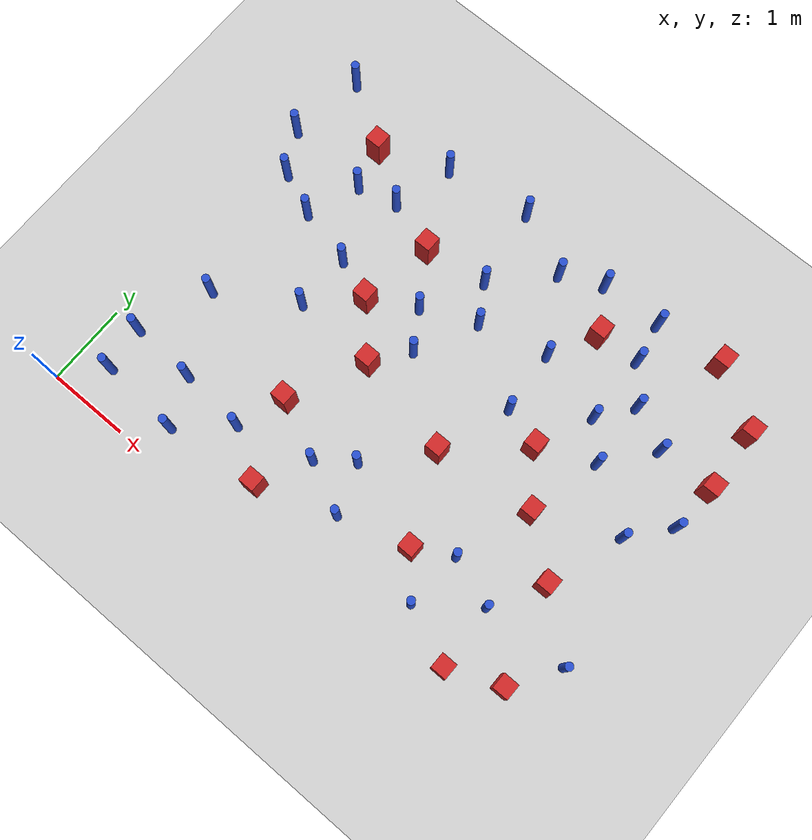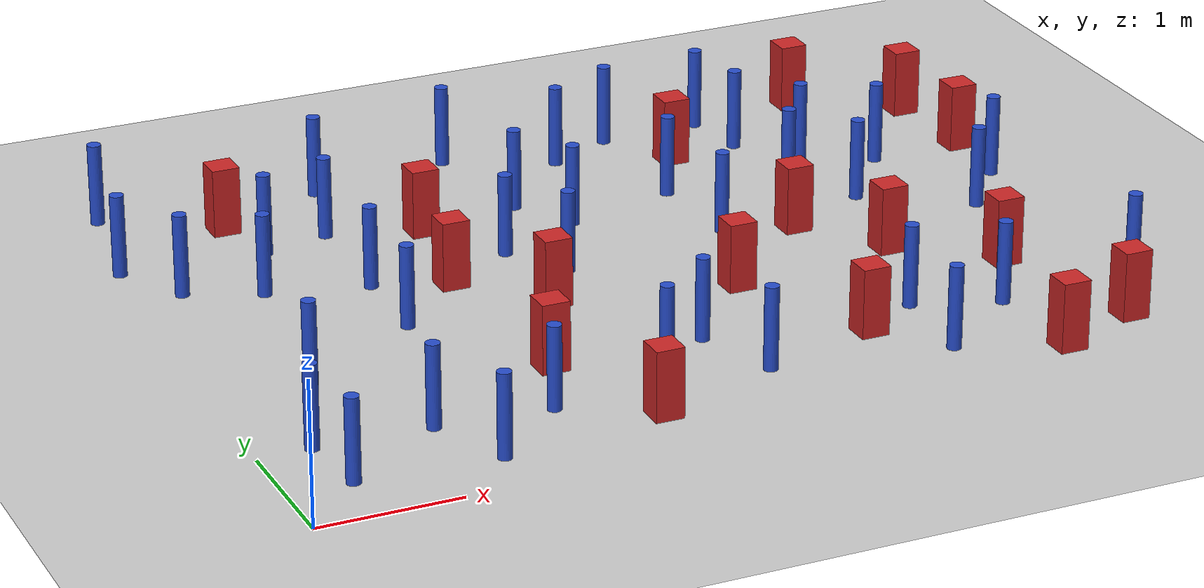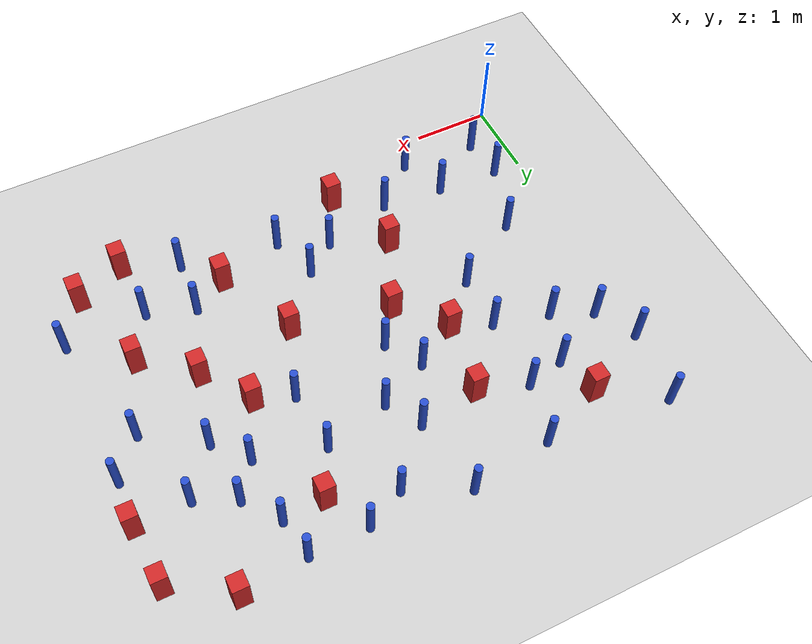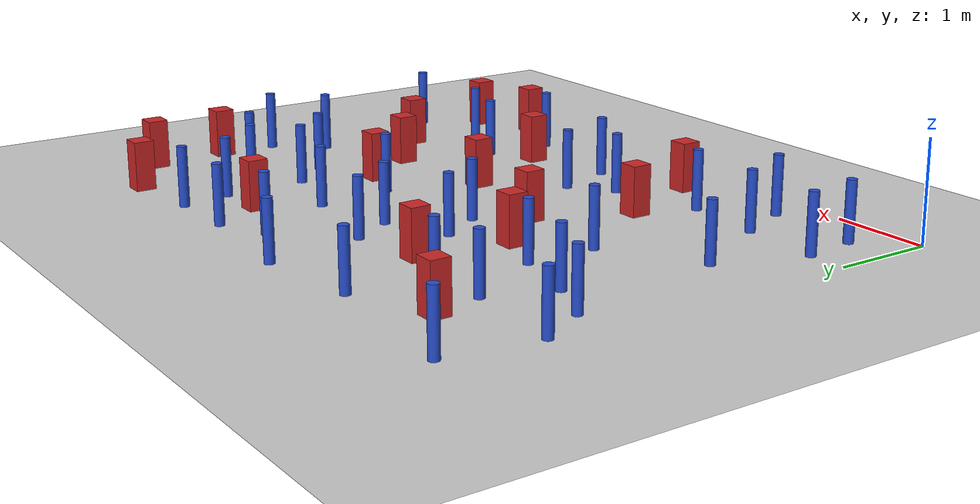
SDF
<sdf version="1.6">
 <world name="default">
  <model name="ground_plane">
   <static>1</static>
   <link name="link">
    <collision name="collision">
     <geometry><plane><normal>0 0 1</normal><size>100 100</size></plane></geometry>
     <surface><friction><ode><mu>100</mu><mu2>50</mu2></ode></friction></surface>
    </collision>
    <visual name="visual">
     <cast_shadows>0</cast_shadows>
     <geometry><plane><normal>0 0 1</normal><size>100 100</size></plane></geometry>
     <material>
      <ambient>1.0 1.0 1.0 1.0</ambient>
      <diffuse>0.8 0.8 0.8 1.0</diffuse>
      <specular>0.01 0.01 0.01 1.000000</specular>
     </material>
    </visual>
   </link>
  </model>
  <model name="pole_obstacle2">
   <static>true</static>
   <pose>3.64827006361 4.64139536946 -9.47619616065e-06 5.49618799738e-07 2.3631041406e-07 -1.55090534801e-07</pose>
   <link name="link">
    <pose>0 0 0.3 0 -0 0</pose>
    <inertial>
     <mass>1</mass>
     <inertia><ixx>0.145833</ixx><ixy>0</ixy><ixz>0</ixz><iyy>0.145833</iyy><iyz>0</iyz><izz>0.125</izz></inertia>
    </inertial>
    <collision name="collision">
     <geometry><cylinder><radius>0.05</radius><length>.6</length></cylinder></geometry>
    </collision>
    <visual name="visual">
     <geometry><cylinder><radius>0.05</radius><length>.6</length></cylinder></geometry>
     <material>
      <script><name>Gazebo/Blue</name><uri>file://media/materials/scripts/gazebo.material</uri></script>
     </material>
    </visual>
   </link>
  </model>
  <model name="square_post_obstacle2">
   <static>true</static>
   <pose>2.5933843695 0.53864934318 -6.11067671241e-07 -5.50515727128e-06 -8.79689657224e-07 2.37013304536e-05</pose>
   <link name="link">
    <pose>0 0 0.25 0 -0 0</pose>
    <inertial>
     <mass>100</mass>
     <inertia>
      <ixx>0.166667</ixx>
      <ixy>0</ixy>
      <ixz>0</ixz>
      <iyy>0.166667</iyy>
      <iyz>0</iyz>
      <izz>0.166667</izz>
     </inertia>
    </inertial>
    <collision name="collision"><geometry><box><size>.2 .2 .5</size></box></geometry></collision>
    <visual name="visual">
     <geometry><box><size>.2 .2 .5</size></box></geometry>
     <material>
      <script><name>Gazebo/Red</name><uri>file://media/materials/scripts/gazebo.material</uri></script>
     </material>
    </visual>
   </link>
  </model>
  <model name="square_post_obstacle4">
   <static>true</static>
   <pose>6.48960787232 3.74774765811 -6.11067671241e-07 -5.50515727128e-06 -8.79689657224e-07 2.37013304536e-05</pose>
   <link name="link">
    <pose>0 0 0.25 0 -0 0</pose>
    <inertial>
     <mass>100</mass>
     <inertia>
      <ixx>0.166667</ixx>
      <ixy>0</ixy>
      <ixz>0</ixz>
      <iyy>0.166667</iyy>
      <iyz>0</iyz>
      <izz>0.166667</izz>
     </inertia>
    </inertial>
    <collision name="collision"><geometry><box><size>.2 .2 .5</size></box></geometry></collision>
    <visual name="visual">
     <geometry><box><size>.2 .2 .5</size></box></geometry>
     <material>
      <script><name>Gazebo/Red</name><uri>file://media/materials/scripts/gazebo.material</uri></script>
     </material>
    </visual>
   </link>
  </model>
  <model name="pole_obstacle7">
   <static>true</static>
   <pose>5.41939014065 1.15405519422 -9.47619616065e-06 5.49618799738e-07 2.36310414071e-07 -1.55090534796e-07</pose>
   <link name="link">
    <pose>0 0 0.3 0 -0 0</pose>
    <inertial>
     <mass>1</mass>
     <inertia><ixx>0.145833</ixx><ixy>0</ixy><ixz>0</ixz><iyy>0.145833</iyy><iyz>0</iyz><izz>0.125</izz></inertia>
    </inertial>
    <collision name="collision">
     <geometry><cylinder><radius>0.05</radius><length>.6</length></cylinder></geometry>
    </collision>
    <visual name="visual">
     <geometry><cylinder><radius>0.05</radius><length>.6</length></cylinder></geometry>
     <material>
      <script><name>Gazebo/Blue</name><uri>file://media/materials/scripts/gazebo.material</uri></script>
     </material>
    </visual>
   </link>
  </model>
  <model name="pole_obstacle15">
   <static>true</static>
   <pose>5.80588194587 3.73845712251 -9.47619616065e-06 5.49618799738e-07 2.36310414051e-07 -1.55090534805e-07</pose>
   <link name="link">
    <pose>0 0 0.3 0 -0 0</pose>
    <inertial>
     <mass>1</mass>
     <inertia><ixx>0.145833</ixx><ixy>0</ixy><ixz>0</ixz><iyy>0.145833</iyy><iyz>0</iyz><izz>0.125</izz></inertia>
    </inertial>
    <collision name="collision">
     <geometry><cylinder><radius>0.05</radius><length>.6</length></cylinder></geometry>
    </collision>
    <visual name="visual">
     <geometry><cylinder><radius>0.05</radius><length>.6</length></cylinder></geometry>
     <material>
      <script><name>Gazebo/Blue</name><uri>file://media/materials/scripts/gazebo.material</uri></script>
     </material>
    </visual>
   </link>
  </model>
  <model name="pole_obstacle22">
   <static>true</static>
   <pose>2.90407277944 1.15484477547 -9.47619616065e-06 5.49618799737e-07 2.36310414072e-07 -1.55090534793e-07</pose>
   <link name="link">
    <pose>0 0 0.3 0 -0 0</pose>
    <inertial>
     <mass>1</mass>
     <inertia><ixx>0.145833</ixx><ixy>0</ixy><ixz>0</ixz><iyy>0.145833</iyy><iyz>0</iyz><izz>0.125</izz></inertia>
    </inertial>
    <collision name="collision">
     <geometry><cylinder><radius>0.05</radius><length>.6</length></cylinder></geometry>
    </collision>
    <visual name="visual">
     <geometry><cylinder><radius>0.05</radius><length>.6</length></cylinder></geometry>
     <material>
      <script><name>Gazebo/Blue</name><uri>file://media/materials/scripts/gazebo.material</uri></script>
     </material>
    </visual>
   </link>
  </model>
  <model name="pole_obstacle31">
   <static>true</static>
   <pose>0.258231980519 4.98055791909 -9.47619616065e-06 5.49618799737e-07 2.36310414067e-07 -1.55090534795e-07</pose>
   <link name="link">
    <pose>0 0 0.3 0 -0 0</pose>
    <inertial>
     <mass>1</mass>
     <inertia><ixx>0.145833</ixx><ixy>0</ixy><ixz>0</ixz><iyy>0.145833</iyy><iyz>0</iyz><izz>0.125</izz></inertia>
    </inertial>
    <collision name="collision">
     <geometry><cylinder><radius>0.05</radius><length>.6</length></cylinder></geometry>
    </collision>
    <visual name="visual">
     <geometry><cylinder><radius>0.05</radius><length>.6</length></cylinder></geometry>
     <material>
      <script><name>Gazebo/Blue</name><uri>file://media/materials/scripts/gazebo.material</uri></script>
     </material>
    </visual>
   </link>
  </model>
  <model name="square_post_obstacle28">
   <static>true</static>
   <pose>2.64574567322 2.40821894053 -6.11067671241e-07 -5.50515727128e-06 -8.79689657224e-07 2.37013304536e-05</pose>
   <link name="link">
    <pose>0 0 0.25 0 -0 0</pose>
    <inertial>
     <mass>100</mass>
     <inertia>
      <ixx>0.166667</ixx>
      <ixy>0</ixy>
      <ixz>0</ixz>
      <iyy>0.166667</iyy>
      <iyz>0</iyz>
      <izz>0.166667</izz>
     </inertia>
    </inertial>
    <collision name="collision"><geometry><box><size>.2 .2 .5</size></box></geometry></collision>
    <visual name="visual">
     <geometry><box><size>.2 .2 .5</size></box></geometry>
     <material>
      <script><name>Gazebo/Red</name><uri>file://media/materials/scripts/gazebo.material</uri></script>
     </material>
    </visual>
   </link>
  </model>
  <model name="pole_obstacle34">
   <static>true</static>
   <pose>6.45765616082 1.19782271041 -9.47619616065e-06 5.49618799738e-07 2.36310414071e-07 -1.55090534796e-07</pose>
   <link name="link">
    <pose>0 0 0.3 0 -0 0</pose>
    <inertial>
     <mass>1</mass>
     <inertia><ixx>0.145833</ixx><ixy>0</ixy><ixz>0</ixz><iyy>0.145833</iyy><iyz>0</iyz><izz>0.125</izz></inertia>
    </inertial>
    <collision name="collision">
     <geometry><cylinder><radius>0.05</radius><length>.6</length></cylinder></geometry>
    </collision>
    <visual name="visual">
     <geometry><cylinder><radius>0.05</radius><length>.6</length></cylinder></geometry>
     <material>
      <script><name>Gazebo/Blue</name><uri>file://media/materials/scripts/gazebo.material</uri></script>
     </material>
    </visual>
   </link>
  </model>
  <model name="square_post_obstacle32">
   <static>true</static>
   <pose>5.12955143993 2.27299432949 -6.11067671241e-07 -5.50515727128e-06 -8.79689657224e-07 2.37013304536e-05</pose>
   <link name="link">
    <pose>0 0 0.25 0 -0 0</pose>
    <inertial>
     <mass>100</mass>
     <inertia>
      <ixx>0.166667</ixx>
      <ixy>0</ixy>
      <ixz>0</ixz>
      <iyy>0.166667</iyy>
      <iyz>0</iyz>
      <izz>0.166667</izz>
     </inertia>
    </inertial>
    <collision name="collision"><geometry><box><size>.2 .2 .5</size></box></geometry></collision>
    <visual name="visual">
     <geometry><box><size>.2 .2 .5</size></box></geometry>
     <material>
      <script><name>Gazebo/Red</name><uri>file://media/materials/scripts/gazebo.material</uri></script>
     </material>
    </visual>
   </link>
  </model>
  <model name="square_post_obstacle41">
   <static>true</static>
   <pose>2.21705216927 1.48048706928 -6.11067671241e-07 -5.50515727128e-06 -8.79689657224e-07 2.37013304536e-05</pose>
   <link name="link">
    <pose>0 0 0.25 0 -0 0</pose>
    <inertial>
     <mass>100</mass>
     <inertia>
      <ixx>0.166667</ixx>
      <ixy>0</ixy>
      <ixz>0</ixz>
      <iyy>0.166667</iyy>
      <iyz>0</iyz>
      <izz>0.166667</izz>
     </inertia>
    </inertial>
    <collision name="collision"><geometry><box><size>.2 .2 .5</size></box></geometry></collision>
    <visual name="visual">
     <geometry><box><size>.2 .2 .5</size></box></geometry>
     <material>
      <script><name>Gazebo/Red</name><uri>file://media/materials/scripts/gazebo.material</uri></script>
     </material>
    </visual>
   </link>
  </model>
  <model name="square_post_obstacle42">
   <static>true</static>
   <pose>4.44764341895 4.35927794571 -6.11067671241e-07 -5.50515727128e-06 -8.79689657224e-07 2.37013304536e-05</pose>
   <link name="link">
    <pose>0 0 0.25 0 -0 0</pose>
    <inertial>
     <mass>100</mass>
     <inertia>
      <ixx>0.166667</ixx>
      <ixy>0</ixy>
      <ixz>0</ixz>
      <iyy>0.166667</iyy>
      <iyz>0</iyz>
      <izz>0.166667</izz>
     </inertia>
    </inertial>
    <collision name="collision"><geometry><box><size>.2 .2 .5</size></box></geometry></collision>
    <visual name="visual">
     <geometry><box><size>.2 .2 .5</size></box></geometry>
     <material>
      <script><name>Gazebo/Red</name><uri>file://media/materials/scripts/gazebo.material</uri></script>
     </material>
    </visual>
   </link>
  </model>
  <model name="pole_obstacle57">
   <static>true</static>
   <pose>0.444901139323 0.4705834862 -9.47619616065e-06 5.49618799737e-07 2.36310414059e-07 -1.55090534801e-07</pose>
   <link name="link">
    <pose>0 0 0.3 0 -0 0</pose>
    <inertial>
     <mass>1</mass>
     <inertia><ixx>0.145833</ixx><ixy>0</ixy><ixz>0</ixz><iyy>0.145833</iyy><iyz>0</iyz><izz>0.125</izz></inertia>
    </inertial>
    <collision name="collision">
     <geometry><cylinder><radius>0.05</radius><length>.6</length></cylinder></geometry>
    </collision>
    <visual name="visual">
     <geometry><cylinder><radius>0.05</radius><length>.6</length></cylinder></geometry>
     <material>
      <script><name>Gazebo/Blue</name><uri>file://media/materials/scripts/gazebo.material</uri></script>
     </material>
    </visual>
   </link>
  </model>
  <model name="pole_obstacle59">
   <static>true</static>
   <pose>0.376433804621 1.01182041943 -9.47619616065e-06 5.49618799737e-07 2.36310414063e-07 -1.55090534797e-07</pose>
   <link name="link">
    <pose>0 0 0.3 0 -0 0</pose>
    <inertial>
     <mass>1</mass>
     <inertia><ixx>0.145833</ixx><ixy>0</ixy><ixz>0</ixz><iyy>0.145833</iyy><iyz>0</iyz><izz>0.125</izz></inertia>
    </inertial>
    <collision name="collision">
     <geometry><cylinder><radius>0.05</radius><length>.6</length></cylinder></geometry>
    </collision>
    <visual name="visual">
     <geometry><cylinder><radius>0.05</radius><length>.6</length></cylinder></geometry>
     <material>
      <script><name>Gazebo/Blue</name><uri>file://media/materials/scripts/gazebo.material</uri></script>
     </material>
    </visual>
   </link>
  </model>
  <model name="pole_obstacle68">
   <static>true</static>
   <pose>6.07585043985 2.69736077914 -9.47619616065e-06 5.49618799738e-07 2.36310414051e-07 -1.55090534805e-07</pose>
   <link name="link">
    <pose>0 0 0.3 0 -0 0</pose>
    <inertial>
     <mass>1</mass>
     <inertia><ixx>0.145833</ixx><ixy>0</ixy><ixz>0</ixz><iyy>0.145833</iyy><iyz>0</iyz><izz>0.125</izz></inertia>
    </inertial>
    <collision name="collision">
     <geometry><cylinder><radius>0.05</radius><length>.6</length></cylinder></geometry>
    </collision>
    <visual name="visual">
     <geometry><cylinder><radius>0.05</radius><length>.6</length></cylinder></geometry>
     <material>
      <script><name>Gazebo/Blue</name><uri>file://media/materials/scripts/gazebo.material</uri></script>
     </material>
    </visual>
   </link>
  </model>
  <model name="square_post_obstacle52">
   <static>true</static>
   <pose>2.13233644787 2.96930291562 -6.11067671241e-07 -5.50515727128e-06 -8.79689657224e-07 2.37013304536e-05</pose>
   <link name="link">
    <pose>0 0 0.25 0 -0 0</pose>
    <inertial>
     <mass>100</mass>
     <inertia>
      <ixx>0.166667</ixx>
      <ixy>0</ixy>
      <ixz>0</ixz>
      <iyy>0.166667</iyy>
      <iyz>0</iyz>
      <izz>0.166667</izz>
     </inertia>
    </inertial>
    <collision name="collision"><geometry><box><size>.2 .2 .5</size></box></geometry></collision>
    <visual name="visual">
     <geometry><box><size>.2 .2 .5</size></box></geometry>
     <material>
      <script><name>Gazebo/Red</name><uri>file://media/materials/scripts/gazebo.material</uri></script>
     </material>
    </visual>
   </link>
  </model>
  <model name="square_post_obstacle58">
   <static>true</static>
   <pose>6.08697108432 0.623994106372 -6.11067671241e-07 -5.50515727128e-06 -8.79689657224e-07 2.37013304536e-05</pose>
   <link name="link">
    <pose>0 0 0.25 0 -0 0</pose>
    <inertial>
     <mass>100</mass>
     <inertia>
      <ixx>0.166667</ixx>
      <ixy>0</ixy>
      <ixz>0</ixz>
      <iyy>0.166667</iyy>
      <iyz>0</iyz>
      <izz>0.166667</izz>
     </inertia>
    </inertial>
    <collision name="collision"><geometry><box><size>.2 .2 .5</size></box></geometry></collision>
    <visual name="visual">
     <geometry><box><size>.2 .2 .5</size></box></geometry>
     <material>
      <script><name>Gazebo/Red</name><uri>file://media/materials/scripts/gazebo.material</uri></script>
     </material>
    </visual>
   </link>
  </model>
  <model name="pole_obstacle76">
   <static>true</static>
   <pose>1.61790593784 3.15919963644 -9.47619616065e-06 5.49618799737e-07 2.36310414062e-07 -1.55090534798e-07</pose>
   <link name="link">
    <pose>0 0 0.3 0 -0 0</pose>
    <inertial>
     <mass>1</mass>
     <inertia><ixx>0.145833</ixx><ixy>0</ixy><ixz>0</ixz><iyy>0.145833</iyy><iyz>0</iyz><izz>0.125</izz></inertia>
    </inertial>
    <collision name="collision">
     <geometry><cylinder><radius>0.05</radius><length>.6</length></cylinder></geometry>
    </collision>
    <visual name="visual">
     <geometry><cylinder><radius>0.05</radius><length>.6</length></cylinder></geometry>
     <material>
      <script><name>Gazebo/Blue</name><uri>file://media/materials/scripts/gazebo.material</uri></script>
     </material>
    </visual>
   </link>
  </model>
  <model name="square_post_obstacle65">
   <static>true</static>
   <pose>1.02355732992 4.49002078111 -6.11067671241e-07 -5.50515727128e-06 -8.79689657224e-07 2.37013304536e-05</pose>
   <link name="link">
    <pose>0 0 0.25 0 -0 0</pose>
    <inertial>
     <mass>100</mass>
     <inertia>
      <ixx>0.166667</ixx>
      <ixy>0</ixy>
      <ixz>0</ixz>
      <iyy>0.166667</iyy>
      <iyz>0</iyz>
      <izz>0.166667</izz>
     </inertia>
    </inertial>
    <collision name="collision"><geometry><box><size>.2 .2 .5</size></box></geometry></collision>
    <visual name="visual">
     <geometry><box><size>.2 .2 .5</size></box></geometry>
     <material>
      <script><name>Gazebo/Red</name><uri>file://media/materials/scripts/gazebo.material</uri></script>
     </material>
    </visual>
   </link>
  </model>
  <model name="pole_obstacle78">
   <static>true</static>
   <pose>5.30607369204 3.97363138098 -9.47619616065e-06 5.49618799737e-07 2.36310414054e-07 -1.55090534804e-07</pose>
   <link name="link">
    <pose>0 0 0.3 0 -0 0</pose>
    <inertial>
     <mass>1</mass>
     <inertia><ixx>0.145833</ixx><ixy>0</ixy><ixz>0</ixz><iyy>0.145833</iyy><iyz>0</iyz><izz>0.125</izz></inertia>
    </inertial>
    <collision name="collision">
     <geometry><cylinder><radius>0.05</radius><length>.6</length></cylinder></geometry>
    </collision>
    <visual name="visual">
     <geometry><cylinder><radius>0.05</radius><length>.6</length></cylinder></geometry>
     <material>
      <script><name>Gazebo/Blue</name><uri>file://media/materials/scripts/gazebo.material</uri></script>
     </material>
    </visual>
   </link>
  </model>
  <model name="square_post_obstacle68">
   <static>true</static>
   <pose>4.37310517181 1.10966237829 -6.11067671241e-07 -5.50515727128e-06 -8.79689657224e-07 2.37013304536e-05</pose>
   <link name="link">
    <pose>0 0 0.25 0 -0 0</pose>
    <inertial>
     <mass>100</mass>
     <inertia>
      <ixx>0.166667</ixx>
      <ixy>0</ixy>
      <ixz>0</ixz>
      <iyy>0.166667</iyy>
      <iyz>0</iyz>
      <izz>0.166667</izz>
     </inertia>
    </inertial>
    <collision name="collision"><geometry><box><size>.2 .2 .5</size></box></geometry></collision>
    <visual name="visual">
     <geometry><box><size>.2 .2 .5</size></box></geometry>
     <material>
      <script><name>Gazebo/Red</name><uri>file://media/materials/scripts/gazebo.material</uri></script>
     </material>
    </visual>
   </link>
  </model>
  <model name="pole_obstacle82">
   <static>true</static>
   <pose>0.70045014602 1.89455593118 -9.47619616065e-06 5.49618799738e-07 2.36310414061e-07 -1.55090534801e-07</pose>
   <link name="link">
    <pose>0 0 0.3 0 -0 0</pose>
    <inertial>
     <mass>1</mass>
     <inertia><ixx>0.145833</ixx><ixy>0</ixy><ixz>0</ixz><iyy>0.145833</iyy><iyz>0</iyz><izz>0.125</izz></inertia>
    </inertial>
    <collision name="collision">
     <geometry><cylinder><radius>0.05</radius><length>.6</length></cylinder></geometry>
    </collision>
    <visual name="visual">
     <geometry><cylinder><radius>0.05</radius><length>.6</length></cylinder></geometry>
     <material>
      <script><name>Gazebo/Blue</name><uri>file://media/materials/scripts/gazebo.material</uri></script>
     </material>
    </visual>
   </link>
  </model>
  <model name="square_post_obstacle73">
   <static>true</static>
   <pose>5.75783311615 1.76391020135 -6.11067671241e-07 -5.50515727128e-06 -8.79689657224e-07 2.37013304536e-05</pose>
   <link name="link">
    <pose>0 0 0.25 0 -0 0</pose>
    <inertial>
     <mass>100</mass>
     <inertia>
      <ixx>0.166667</ixx>
      <ixy>0</ixy>
      <ixz>0</ixz>
      <iyy>0.166667</iyy>
      <iyz>0</iyz>
      <izz>0.166667</izz>
     </inertia>
    </inertial>
    <collision name="collision"><geometry><box><size>.2 .2 .5</size></box></geometry></collision>
    <visual name="visual">
     <geometry><box><size>.2 .2 .5</size></box></geometry>
     <material>
      <script><name>Gazebo/Red</name><uri>file://media/materials/scripts/gazebo.material</uri></script>
     </material>
    </visual>
   </link>
  </model>
  <model name="pole_obstacle90">
   <static>true</static>
   <pose>1.43057988366 0.399294750019 -9.47619616065e-06 5.49618799737e-07 2.36310414064e-07 -1.55090534799e-07</pose>
   <link name="link">
    <pose>0 0 0.3 0 -0 0</pose>
    <inertial>
     <mass>1</mass>
     <inertia><ixx>0.145833</ixx><ixy>0</ixy><ixz>0</ixz><iyy>0.145833</iyy><iyz>0</iyz><izz>0.125</izz></inertia>
    </inertial>
    <collision name="collision">
     <geometry><cylinder><radius>0.05</radius><length>.6</length></cylinder></geometry>
    </collision>
    <visual name="visual">
     <geometry><cylinder><radius>0.05</radius><length>.6</length></cylinder></geometry>
     <material>
      <script><name>Gazebo/Blue</name><uri>file://media/materials/scripts/gazebo.material</uri></script>
     </material>
    </visual>
   </link>
  </model>
  <model name="pole_obstacle101">
   <static>true</static>
   <pose>3.04928678563 4.01238981591 -9.47619616065e-06 5.49618799737e-07 2.36310414061e-07 -1.55090534801e-07</pose>
   <link name="link">
    <pose>0 0 0.3 0 -0 0</pose>
    <inertial>
     <mass>1</mass>
     <inertia><ixx>0.145833</ixx><ixy>0</ixy><ixz>0</ixz><iyy>0.145833</iyy><iyz>0</iyz><izz>0.125</izz></inertia>
    </inertial>
    <collision name="collision">
     <geometry><cylinder><radius>0.05</radius><length>.6</length></cylinder></geometry>
    </collision>
    <visual name="visual">
     <geometry><cylinder><radius>0.05</radius><length>.6</length></cylinder></geometry>
     <material>
      <script><name>Gazebo/Blue</name><uri>file://media/materials/scripts/gazebo.material</uri></script>
     </material>
    </visual>
   </link>
  </model>
  <model name="square_post_obstacle98">
   <static>true</static>
   <pose>2.28259745326 3.88660938742 -6.11067671241e-07 -5.50515727128e-06 -8.79689657224e-07 2.37013304536e-05</pose>
   <link name="link">
    <pose>0 0 0.25 0 -0 0</pose>
    <inertial>
     <mass>100</mass>
     <inertia>
      <ixx>0.166667</ixx>
      <ixy>0</ixy>
      <ixz>0</ixz>
      <iyy>0.166667</iyy>
      <iyz>0</iyz>
      <izz>0.166667</izz>
     </inertia>
    </inertial>
    <collision name="collision"><geometry><box><size>.2 .2 .5</size></box></geometry></collision>
    <visual name="visual">
     <geometry><box><size>.2 .2 .5</size></box></geometry>
     <material>
      <script><name>Gazebo/Red</name><uri>file://media/materials/scripts/gazebo.material</uri></script>
     </material>
    </visual>
   </link>
  </model>
  <model name="pole_obstacle105">
   <static>true</static>
   <pose>5.3573500427 3.17229279199 -9.47619616065e-06 5.49618799738e-07 2.36310414051e-07 -1.55090534805e-07</pose>
   <link name="link">
    <pose>0 0 0.3 0 -0 0</pose>
    <inertial>
     <mass>1</mass>
     <inertia><ixx>0.145833</ixx><ixy>0</ixy><ixz>0</ixz><iyy>0.145833</iyy><iyz>0</iyz><izz>0.125</izz></inertia>
    </inertial>
    <collision name="collision">
     <geometry><cylinder><radius>0.05</radius><length>.6</length></cylinder></geometry>
    </collision>
    <visual name="visual">
     <geometry><cylinder><radius>0.05</radius><length>.6</length></cylinder></geometry>
     <material>
      <script><name>Gazebo/Blue</name><uri>file://media/materials/scripts/gazebo.material</uri></script>
     </material>
    </visual>
   </link>
  </model>
  <model name="pole_obstacle107">
   <static>true</static>
   <pose>0.118294266724 4.05410882628 -9.47619616065e-06 5.49618799737e-07 2.36310414061e-07 -1.550905348e-07</pose>
   <link name="link">
    <pose>0 0 0.3 0 -0 0</pose>
    <inertial>
     <mass>1</mass>
     <inertia><ixx>0.145833</ixx><ixy>0</ixy><ixz>0</ixz><iyy>0.145833</iyy><iyz>0</iyz><izz>0.125</izz></inertia>
    </inertial>
    <collision name="collision">
     <geometry><cylinder><radius>0.05</radius><length>.6</length></cylinder></geometry>
    </collision>
    <visual name="visual">
     <geometry><cylinder><radius>0.05</radius><length>.6</length></cylinder></geometry>
     <material>
      <script><name>Gazebo/Blue</name><uri>file://media/materials/scripts/gazebo.material</uri></script>
     </material>
    </visual>
   </link>
  </model>
  <model name="pole_obstacle109">
   <static>true</static>
   <pose>1.60424517653 2.45528885384 -9.47619616065e-06 5.49618799737e-07 2.36310414062e-07 -1.55090534798e-07</pose>
   <link name="link">
    <pose>0 0 0.3 0 -0 0</pose>
    <inertial>
     <mass>1</mass>
     <inertia><ixx>0.145833</ixx><ixy>0</ixy><ixz>0</ixz><iyy>0.145833</iyy><iyz>0</iyz><izz>0.125</izz></inertia>
    </inertial>
    <collision name="collision">
     <geometry><cylinder><radius>0.05</radius><length>.6</length></cylinder></geometry>
    </collision>
    <visual name="visual">
     <geometry><cylinder><radius>0.05</radius><length>.6</length></cylinder></geometry>
     <material>
      <script><name>Gazebo/Blue</name><uri>file://media/materials/scripts/gazebo.material</uri></script>
     </material>
    </visual>
   </link>
  </model>
  <model name="pole_obstacle112">
   <static>true</static>
   <pose>3.30910281459 1.46011977952 -9.47619616065e-06 5.49618799737e-07 2.36310414072e-07 -1.55090534793e-07</pose>
   <link name="link">
    <pose>0 0 0.3 0 -0 0</pose>
    <inertial>
     <mass>1</mass>
     <inertia><ixx>0.145833</ixx><ixy>0</ixy><ixz>0</ixz><iyy>0.145833</iyy><iyz>0</iyz><izz>0.125</izz></inertia>
    </inertial>
    <collision name="collision">
     <geometry><cylinder><radius>0.05</radius><length>.6</length></cylinder></geometry>
    </collision>
    <visual name="visual">
     <geometry><cylinder><radius>0.05</radius><length>.6</length></cylinder></geometry>
     <material>
      <script><name>Gazebo/Blue</name><uri>file://media/materials/scripts/gazebo.material</uri></script>
     </material>
    </visual>
   </link>
  </model>
  <model name="pole_obstacle117">
   <static>true</static>
   <pose>4.9802793263 4.40038333977 -9.47619616065e-06 5.49618799737e-07 2.36310414037e-07 -1.55090534814e-07</pose>
   <link name="link">
    <pose>0 0 0.3 0 -0 0</pose>
    <inertial>
     <mass>1</mass>
     <inertia><ixx>0.145833</ixx><ixy>0</ixy><ixz>0</ixz><iyy>0.145833</iyy><iyz>0</iyz><izz>0.125</izz></inertia>
    </inertial>
    <collision name="collision">
     <geometry><cylinder><radius>0.05</radius><length>.6</length></cylinder></geometry>
    </collision>
    <visual name="visual">
     <geometry><cylinder><radius>0.05</radius><length>.6</length></cylinder></geometry>
     <material>
      <script><name>Gazebo/Blue</name><uri>file://media/materials/scripts/gazebo.material</uri></script>
     </material>
    </visual>
   </link>
  </model>
  <model name="square_post_obstacle119">
   <static>true</static>
   <pose>6.43998617321 4.52654058072 -6.11067671241e-07 -5.50515727128e-06 -8.79689657224e-07 2.37013304536e-05</pose>
   <link name="link">
    <pose>0 0 0.25 0 -0 0</pose>
    <inertial>
     <mass>100</mass>
     <inertia>
      <ixx>0.166667</ixx>
      <ixy>0</ixy>
      <ixz>0</ixz>
      <iyy>0.166667</iyy>
      <iyz>0</iyz>
      <izz>0.166667</izz>
     </inertia>
    </inertial>
    <collision name="collision"><geometry><box><size>.2 .2 .5</size></box></geometry></collision>
    <visual name="visual">
     <geometry><box><size>.2 .2 .5</size></box></geometry>
     <material>
      <script><name>Gazebo/Red</name><uri>file://media/materials/scripts/gazebo.material</uri></script>
     </material>
    </visual>
   </link>
  </model>
  <model name="pole_obstacle119">
   <static>true</static>
   <pose>4.8176824082 1.36395705237 -9.47619616065e-06 5.49618799738e-07 2.36310414071e-07 -1.55090534796e-07</pose>
   <link name="link">
    <pose>0 0 0.3 0 -0 0</pose>
    <inertial>
     <mass>1</mass>
     <inertia><ixx>0.145833</ixx><ixy>0</ixy><ixz>0</ixz><iyy>0.145833</iyy><iyz>0</iyz><izz>0.125</izz></inertia>
    </inertial>
    <collision name="collision">
     <geometry><cylinder><radius>0.05</radius><length>.6</length></cylinder></geometry>
    </collision>
    <visual name="visual">
     <geometry><cylinder><radius>0.05</radius><length>.6</length></cylinder></geometry>
     <material>
      <script><name>Gazebo/Blue</name><uri>file://media/materials/scripts/gazebo.material</uri></script>
     </material>
    </visual>
   </link>
  </model>
  <model name="pole_obstacle125">
   <static>true</static>
   <pose>3.51673532458 0.86251052595 -9.47619616065e-06 5.49618799738e-07 2.36310414075e-07 -1.55090534793e-07</pose>
   <link name="link">
    <pose>0 0 0.3 0 -0 0</pose>
    <inertial>
     <mass>1</mass>
     <inertia><ixx>0.145833</ixx><ixy>0</ixy><ixz>0</ixz><iyy>0.145833</iyy><iyz>0</iyz><izz>0.125</izz></inertia>
    </inertial>
    <collision name="collision">
     <geometry><cylinder><radius>0.05</radius><length>.6</length></cylinder></geometry>
    </collision>
    <visual name="visual">
     <geometry><cylinder><radius>0.05</radius><length>.6</length></cylinder></geometry>
     <material>
      <script><name>Gazebo/Blue</name><uri>file://media/materials/scripts/gazebo.material</uri></script>
     </material>
    </visual>
   </link>
  </model>
  <model name="pole_obstacle127">
   <static>true</static>
   <pose>1.64120202698 4.0952884193 -9.47619616065e-06 5.49618799737e-07 2.36310414061e-07 -1.550905348e-07</pose>
   <link name="link">
    <pose>0 0 0.3 0 -0 0</pose>
    <inertial>
     <mass>1</mass>
     <inertia><ixx>0.145833</ixx><ixy>0</ixy><ixz>0</ixz><iyy>0.145833</iyy><iyz>0</iyz><izz>0.125</izz></inertia>
    </inertial>
    <collision name="collision">
     <geometry><cylinder><radius>0.05</radius><length>.6</length></cylinder></geometry>
    </collision>
    <visual name="visual">
     <geometry><cylinder><radius>0.05</radius><length>.6</length></cylinder></geometry>
     <material>
      <script><name>Gazebo/Blue</name><uri>file://media/materials/scripts/gazebo.material</uri></script>
     </material>
    </visual>
   </link>
  </model>
  <model name="pole_obstacle134">
   <static>true</static>
   <pose>1.84112305216 4.83174862158 -9.47619616065e-06 5.49618799737e-07 2.36310414061e-07 -1.550905348e-07</pose>
   <link name="link">
    <pose>0 0 0.3 0 -0 0</pose>
    <inertial>
     <mass>1</mass>
     <inertia><ixx>0.145833</ixx><ixy>0</ixy><ixz>0</ixz><iyy>0.145833</iyy><iyz>0</iyz><izz>0.125</izz></inertia>
    </inertial>
    <collision name="collision">
     <geometry><cylinder><radius>0.05</radius><length>.6</length></cylinder></geometry>
    </collision>
    <visual name="visual">
     <geometry><cylinder><radius>0.05</radius><length>.6</length></cylinder></geometry>
     <material>
      <script><name>Gazebo/Blue</name><uri>file://media/materials/scripts/gazebo.material</uri></script>
     </material>
    </visual>
   </link>
  </model>
  <model name="pole_obstacle135">
   <static>true</static>
   <pose>2.95171291605 2.84871074686 -9.47619616065e-06 5.49618799737e-07 2.36310414051e-07 -1.55090534807e-07</pose>
   <link name="link">
    <pose>0 0 0.3 0 -0 0</pose>
    <inertial>
     <mass>1</mass>
     <inertia><ixx>0.145833</ixx><ixy>0</ixy><ixz>0</ixz><iyy>0.145833</iyy><iyz>0</iyz><izz>0.125</izz></inertia>
    </inertial>
    <collision name="collision">
     <geometry><cylinder><radius>0.05</radius><length>.6</length></cylinder></geometry>
    </collision>
    <visual name="visual">
     <geometry><cylinder><radius>0.05</radius><length>.6</length></cylinder></geometry>
     <material>
      <script><name>Gazebo/Blue</name><uri>file://media/materials/scripts/gazebo.material</uri></script>
     </material>
    </visual>
   </link>
  </model>
  <model name="pole_obstacle136">
   <static>true</static>
   <pose>2.89406957391 4.98719439676 -9.47619616065e-06 5.49618799738e-07 2.3631041406e-07 -1.55090534801e-07</pose>
   <link name="link">
    <pose>0 0 0.3 0 -0 0</pose>
    <inertial>
     <mass>1</mass>
     <inertia><ixx>0.145833</ixx><ixy>0</ixy><ixz>0</ixz><iyy>0.145833</iyy><iyz>0</iyz><izz>0.125</izz></inertia>
    </inertial>
    <collision name="collision">
     <geometry><cylinder><radius>0.05</radius><length>.6</length></cylinder></geometry>
    </collision>
    <visual name="visual">
     <geometry><cylinder><radius>0.05</radius><length>.6</length></cylinder></geometry>
     <material>
      <script><name>Gazebo/Blue</name><uri>file://media/materials/scripts/gazebo.material</uri></script>
     </material>
    </visual>
   </link>
  </model>
  <model name="pole_obstacle141">
   <static>true</static>
   <pose>1.15246744396 3.97909338472 -9.47619616065e-06 5.49618799738e-07 2.36310414065e-07 -1.550905348e-07</pose>
   <link name="link">
    <pose>0 0 0.3 0 -0 0</pose>
    <inertial>
     <mass>1</mass>
     <inertia><ixx>0.145833</ixx><ixy>0</ixy><ixz>0</ixz><iyy>0.145833</iyy><iyz>0</iyz><izz>0.125</izz></inertia>
    </inertial>
    <collision name="collision">
     <geometry><cylinder><radius>0.05</radius><length>.6</length></cylinder></geometry>
    </collision>
    <visual name="visual">
     <geometry><cylinder><radius>0.05</radius><length>.6</length></cylinder></geometry>
     <material>
      <script><name>Gazebo/Blue</name><uri>file://media/materials/scripts/gazebo.material</uri></script>
     </material>
    </visual>
   </link>
  </model>
  <model name="pole_obstacle142">
   <static>true</static>
   <pose>4.14028668731 4.87520709005 -9.47619616065e-06 5.49618799737e-07 2.36310414037e-07 -1.55090534814e-07</pose>
   <link name="link">
    <pose>0 0 0.3 0 -0 0</pose>
    <inertial>
     <mass>1</mass>
     <inertia><ixx>0.145833</ixx><ixy>0</ixy><ixz>0</ixz><iyy>0.145833</iyy><iyz>0</iyz><izz>0.125</izz></inertia>
    </inertial>
    <collision name="collision">
     <geometry><cylinder><radius>0.05</radius><length>.6</length></cylinder></geometry>
    </collision>
    <visual name="visual">
     <geometry><cylinder><radius>0.05</radius><length>.6</length></cylinder></geometry>
     <material>
      <script><name>Gazebo/Blue</name><uri>file://media/materials/scripts/gazebo.material</uri></script>
     </material>
    </visual>
   </link>
  </model>
  <model name="pole_obstacle148">
   <static>true</static>
   <pose>4.8931463 4.89308393797 -9.47619616065e-06 5.49618799737e-07 2.36310414037e-07 -1.55090534814e-07</pose>
   <link name="link">
    <pose>0 0 0.3 0 -0 0</pose>
    <inertial>
     <mass>1</mass>
     <inertia><ixx>0.145833</ixx><ixy>0</ixy><ixz>0</ixz><iyy>0.145833</iyy><iyz>0</iyz><izz>0.125</izz></inertia>
    </inertial>
    <collision name="collision">
     <geometry><cylinder><radius>0.05</radius><length>.6</length></cylinder></geometry>
    </collision>
    <visual name="visual">
     <geometry><cylinder><radius>0.05</radius><length>.6</length></cylinder></geometry>
     <material>
      <script><name>Gazebo/Blue</name><uri>file://media/materials/scripts/gazebo.material</uri></script>
     </material>
    </visual>
   </link>
  </model>
  <model name="pole_obstacle151">
   <static>true</static>
   <pose>4.21572101753 3.03083984755 -9.47619616065e-06 5.49618799738e-07 2.36310414051e-07 -1.55090534805e-07</pose>
   <link name="link">
    <pose>0 0 0.3 0 -0 0</pose>
    <inertial>
     <mass>1</mass>
     <inertia><ixx>0.145833</ixx><ixy>0</ixy><ixz>0</ixz><iyy>0.145833</iyy><iyz>0</iyz><izz>0.125</izz></inertia>
    </inertial>
    <collision name="collision">
     <geometry><cylinder><radius>0.05</radius><length>.6</length></cylinder></geometry>
    </collision>
    <visual name="visual">
     <geometry><cylinder><radius>0.05</radius><length>.6</length></cylinder></geometry>
     <material>
      <script><name>Gazebo/Blue</name><uri>file://media/materials/scripts/gazebo.material</uri></script>
     </material>
    </visual>
   </link>
  </model>
  <model name="pole_obstacle152">
   <static>true</static>
   <pose>4.7663319514 0.653950211974 -9.47619616065e-06 5.49618799737e-07 2.36310414061e-07 -1.550905348e-07</pose>
   <link name="link">
    <pose>0 0 0.3 0 -0 0</pose>
    <inertial>
     <mass>1</mass>
     <inertia><ixx>0.145833</ixx><ixy>0</ixy><ixz>0</ixz><iyy>0.145833</iyy><iyz>0</iyz><izz>0.125</izz></inertia>
    </inertial>
    <collision name="collision">
     <geometry><cylinder><radius>0.05</radius><length>.6</length></cylinder></geometry>
    </collision>
    <visual name="visual">
     <geometry><cylinder><radius>0.05</radius><length>.6</length></cylinder></geometry>
     <material>
      <script><name>Gazebo/Blue</name><uri>file://media/materials/scripts/gazebo.material</uri></script>
     </material>
    </visual>
   </link>
  </model>
  <model name="pole_obstacle153">
   <static>true</static>
   <pose>5.00361898383 3.5617667103 -9.47619616065e-06 5.49618799738e-07 2.36310414051e-07 -1.55090534805e-07</pose>
   <link name="link">
    <pose>0 0 0.3 0 -0 0</pose>
    <inertial>
     <mass>1</mass>
     <inertia><ixx>0.145833</ixx><ixy>0</ixy><ixz>0</ixz><iyy>0.145833</iyy><iyz>0</iyz><izz>0.125</izz></inertia>
    </inertial>
    <collision name="collision">
     <geometry><cylinder><radius>0.05</radius><length>.6</length></cylinder></geometry>
    </collision>
    <visual name="visual">
     <geometry><cylinder><radius>0.05</radius><length>.6</length></cylinder></geometry>
     <material>
      <script><name>Gazebo/Blue</name><uri>file://media/materials/scripts/gazebo.material</uri></script>
     </material>
    </visual>
   </link>
  </model>
  <model name="square_post_obstacle161">
   <static>true</static>
   <pose>3.89652178157 2.13770961862 -6.11067671241e-07 -5.50515727128e-06 -8.79689657224e-07 2.37013304536e-05</pose>
   <link name="link">
    <pose>0 0 0.25 0 -0 0</pose>
    <inertial>
     <mass>100</mass>
     <inertia>
      <ixx>0.166667</ixx>
      <ixy>0</ixy>
      <ixz>0</ixz>
      <iyy>0.166667</iyy>
      <iyz>0</iyz>
      <izz>0.166667</izz>
     </inertia>
    </inertial>
    <collision name="collision"><geometry><box><size>.2 .2 .5</size></box></geometry></collision>
    <visual name="visual">
     <geometry><box><size>.2 .2 .5</size></box></geometry>
     <material>
      <script><name>Gazebo/Red</name><uri>file://media/materials/scripts/gazebo.material</uri></script>
     </material>
    </visual>
   </link>
  </model>
  <model name="pole_obstacle169">
   <static>true</static>
   <pose>0.912577705536 3.33617270642 -9.47619616065e-06 5.49618799737e-07 2.36310414066e-07 -1.55090534797e-07</pose>
   <link name="link">
    <pose>0 0 0.3 0 -0 0</pose>
    <inertial>
     <mass>1</mass>
     <inertia><ixx>0.145833</ixx><ixy>0</ixy><ixz>0</ixz><iyy>0.145833</iyy><iyz>0</iyz><izz>0.125</izz></inertia>
    </inertial>
    <collision name="collision">
     <geometry><cylinder><radius>0.05</radius><length>.6</length></cylinder></geometry>
    </collision>
    <visual name="visual">
     <geometry><cylinder><radius>0.05</radius><length>.6</length></cylinder></geometry>
     <material>
      <script><name>Gazebo/Blue</name><uri>file://media/materials/scripts/gazebo.material</uri></script>
     </material>
    </visual>
   </link>
  </model>
  <model name="square_post_obstacle169">
   <static>true</static>
   <pose>5.71742201882 4.9814121853 -6.11067671241e-07 -5.50515727128e-06 -8.79689657224e-07 2.37013304536e-05</pose>
   <link name="link">
    <pose>0 0 0.25 0 -0 0</pose>
    <inertial>
     <mass>100</mass>
     <inertia>
      <ixx>0.166667</ixx>
      <ixy>0</ixy>
      <ixz>0</ixz>
      <iyy>0.166667</iyy>
      <iyz>0</iyz>
      <izz>0.166667</izz>
     </inertia>
    </inertial>
    <collision name="collision"><geometry><box><size>.2 .2 .5</size></box></geometry></collision>
    <visual name="visual">
     <geometry><box><size>.2 .2 .5</size></box></geometry>
     <material>
      <script><name>Gazebo/Red</name><uri>file://media/materials/scripts/gazebo.material</uri></script>
     </material>
    </visual>
   </link>
  </model>
  <model name="pole_obstacle172">
   <static>true</static>
   <pose>3.31412040553 3.58547902014 -9.47619616065e-06 5.49618799737e-07 2.36310414051e-07 -1.55090534807e-07</pose>
   <link name="link">
    <pose>0 0 0.3 0 -0 0</pose>
    <inertial>
     <mass>1</mass>
     <inertia><ixx>0.145833</ixx><ixy>0</ixy><ixz>0</ixz><iyy>0.145833</iyy><iyz>0</iyz><izz>0.125</izz></inertia>
    </inertial>
    <collision name="collision">
     <geometry><cylinder><radius>0.05</radius><length>.6</length></cylinder></geometry>
    </collision>
    <visual name="visual">
     <geometry><cylinder><radius>0.05</radius><length>.6</length></cylinder></geometry>
     <material>
      <script><name>Gazebo/Blue</name><uri>file://media/materials/scripts/gazebo.material</uri></script>
     </material>
    </visual>
   </link>
  </model>
  <model name="square_post_obstacle181">
   <static>true</static>
   <pose>5.46126241686 0.366017357827 -6.11067671241e-07 -5.50515727128e-06 -8.79689657224e-07 2.37013304536e-05</pose>
   <link name="link">
    <pose>0 0 0.25 0 -0 0</pose>
    <inertial>
     <mass>100</mass>
     <inertia>
      <ixx>0.166667</ixx>
      <ixy>0</ixy>
      <ixz>0</ixz>
      <iyy>0.166667</iyy>
      <iyz>0</iyz>
      <izz>0.166667</izz>
     </inertia>
    </inertial>
    <collision name="collision"><geometry><box><size>.2 .2 .5</size></box></geometry></collision>
    <visual name="visual">
     <geometry><box><size>.2 .2 .5</size></box></geometry>
     <material>
      <script><name>Gazebo/Red</name><uri>file://media/materials/scripts/gazebo.material</uri></script>
     </material>
    </visual>
   </link>
  </model>
  <model name="pole_obstacle182">
   <static>true</static>
   <pose>6.45861588741 3.16617497585 -9.47619616065e-06 5.49618799738e-07 2.36310414051e-07 -1.55090534805e-07</pose>
   <link name="link">
    <pose>0 0 0.3 0 -0 0</pose>
    <inertial>
     <mass>1</mass>
     <inertia><ixx>0.145833</ixx><ixy>0</ixy><ixz>0</ixz><iyy>0.145833</iyy><iyz>0</iyz><izz>0.125</izz></inertia>
    </inertial>
    <collision name="collision">
     <geometry><cylinder><radius>0.05</radius><length>.6</length></cylinder></geometry>
    </collision>
    <visual name="visual">
     <geometry><cylinder><radius>0.05</radius><length>.6</length></cylinder></geometry>
     <material>
      <script><name>Gazebo/Blue</name><uri>file://media/materials/scripts/gazebo.material</uri></script>
     </material>
    </visual>
   </link>
  </model>
  <model name="square_post_obstacle206">
   <static>true</static>
   <pose>4.6997625774 2.86791980984 -6.11067671241e-07 -5.50515727128e-06 -8.79689657224e-07 2.37013304536e-05</pose>
   <link name="link">
    <pose>0 0 0.25 0 -0 0</pose>
    <inertial>
     <mass>100</mass>
     <inertia>
      <ixx>0.166667</ixx>
      <ixy>0</ixy>
      <ixz>0</ixz>
      <iyy>0.166667</iyy>
      <iyz>0</iyz>
      <izz>0.166667</izz>
     </inertia>
    </inertial>
    <collision name="collision"><geometry><box><size>.2 .2 .5</size></box></geometry></collision>
    <visual name="visual">
     <geometry><box><size>.2 .2 .5</size></box></geometry>
     <material>
      <script><name>Gazebo/Red</name><uri>file://media/materials/scripts/gazebo.material</uri></script>
     </material>
    </visual>
   </link>
  </model>
  <model name="pole_obstacle199">
   <static>true</static>
   <pose>4.15074776412 3.79420880609 -9.47619616065e-06 5.49618799738e-07 2.36310414051e-07 -1.55090534805e-07</pose>
   <link name="link">
    <pose>0 0 0.3 0 -0 0</pose>
    <inertial>
     <mass>1</mass>
     <inertia><ixx>0.145833</ixx><ixy>0</ixy><ixz>0</ixz><iyy>0.145833</iyy><iyz>0</iyz><izz>0.125</izz></inertia>
    </inertial>
    <collision name="collision">
     <geometry><cylinder><radius>0.05</radius><length>.6</length></cylinder></geometry>
    </collision>
    <visual name="visual">
     <geometry><cylinder><radius>0.05</radius><length>.6</length></cylinder></geometry>
     <material>
      <script><name>Gazebo/Blue</name><uri>file://media/materials/scripts/gazebo.material</uri></script>
     </material>
    </visual>
   </link>
  </model>
  <model name="pole_obstacle207">
   <static>true</static>
   <pose>0.398812782152 3.56050299083 -9.47619616065e-06 5.49618799738e-07 2.36310414065e-07 -1.55090534798e-07</pose>
   <link name="link">
    <pose>0 0 0.3 0 -0 0</pose>
    <inertial>
     <mass>1</mass>
     <inertia><ixx>0.145833</ixx><ixy>0</ixy><ixz>0</ixz><iyy>0.145833</iyy><iyz>0</iyz><izz>0.125</izz></inertia>
    </inertial>
    <collision name="collision">
     <geometry><cylinder><radius>0.05</radius><length>.6</length></cylinder></geometry>
    </collision>
    <visual name="visual">
     <geometry><cylinder><radius>0.05</radius><length>.6</length></cylinder></geometry>
     <material>
      <script><name>Gazebo/Blue</name><uri>file://media/materials/scripts/gazebo.material</uri></script>
     </material>
    </visual>
   </link>
  </model>
  <model name="pole_obstacle221">
   <static>true</static>
   <pose>2.67077000939 3.28937002078 -9.47619616065e-06 5.49618799737e-07 2.36310414051e-07 -1.55090534807e-07</pose>
   <link name="link">
    <pose>0 0 0.3 0 -0 0</pose>
    <inertial>
     <mass>1</mass>
     <inertia><ixx>0.145833</ixx><ixy>0</ixy><ixz>0</ixz><iyy>0.145833</iyy><iyz>0</iyz><izz>0.125</izz></inertia>
    </inertial>
    <collision name="collision">
     <geometry><cylinder><radius>0.05</radius><length>.6</length></cylinder></geometry>
    </collision>
    <visual name="visual">
     <geometry><cylinder><radius>0.05</radius><length>.6</length></cylinder></geometry>
     <material>
      <script><name>Gazebo/Blue</name><uri>file://media/materials/scripts/gazebo.material</uri></script>
     </material>
    </visual>
   </link>
  </model>
  <model name="pole_obstacle231">
   <static>true</static>
   <pose>1.18426000939 0.96846402078 -9.47619616065e-06 5.49618799737e-07 2.3631041407e-07 -1.55090534794e-07</pose>
   <link name="link">
    <pose>0 0 0.3 0 -0 0</pose>
    <inertial>
     <mass>1</mass>
     <inertia><ixx>0.145833</ixx><ixy>0</ixy><ixz>0</ixz><iyy>0.145833</iyy><iyz>0</iyz><izz>0.125</izz></inertia>
    </inertial>
    <collision name="collision">
     <geometry><cylinder><radius>0.05</radius><length>.6</length></cylinder></geometry>
    </collision>
    <visual name="visual">
     <geometry><cylinder><radius>0.05</radius><length>.6</length></cylinder></geometry>
     <material>
      <script><name>Gazebo/Blue</name><uri>file://media/materials/scripts/gazebo.material</uri></script>
     </material>
    </visual>
   </link>
  </model>
  <model name="pole_obstacle233">
   <static>true</static>
   <pose>1.99126000939 0.90191102078 -9.47619616065e-06 5.49618799737e-07 2.36310414066e-07 -1.55090534797e-07</pose>
   <link name="link">
    <pose>0 0 0.3 0 -0 0</pose>
    <inertial>
     <mass>1</mass>
     <inertia><ixx>0.145833</ixx><ixy>0</ixy><ixz>0</ixz><iyy>0.145833</iyy><iyz>0</iyz><izz>0.125</izz></inertia>
    </inertial>
    <collision name="collision">
     <geometry><cylinder><radius>0.05</radius><length>.6</length></cylinder></geometry>
    </collision>
    <visual name="visual">
     <geometry><cylinder><radius>0.05</radius><length>.6</length></cylinder></geometry>
     <material>
      <script><name>Gazebo/Blue</name><uri>file://media/materials/scripts/gazebo.material</uri></script>
     </material>
    </visual>
   </link>
  </model>
 </world>
</sdf>
